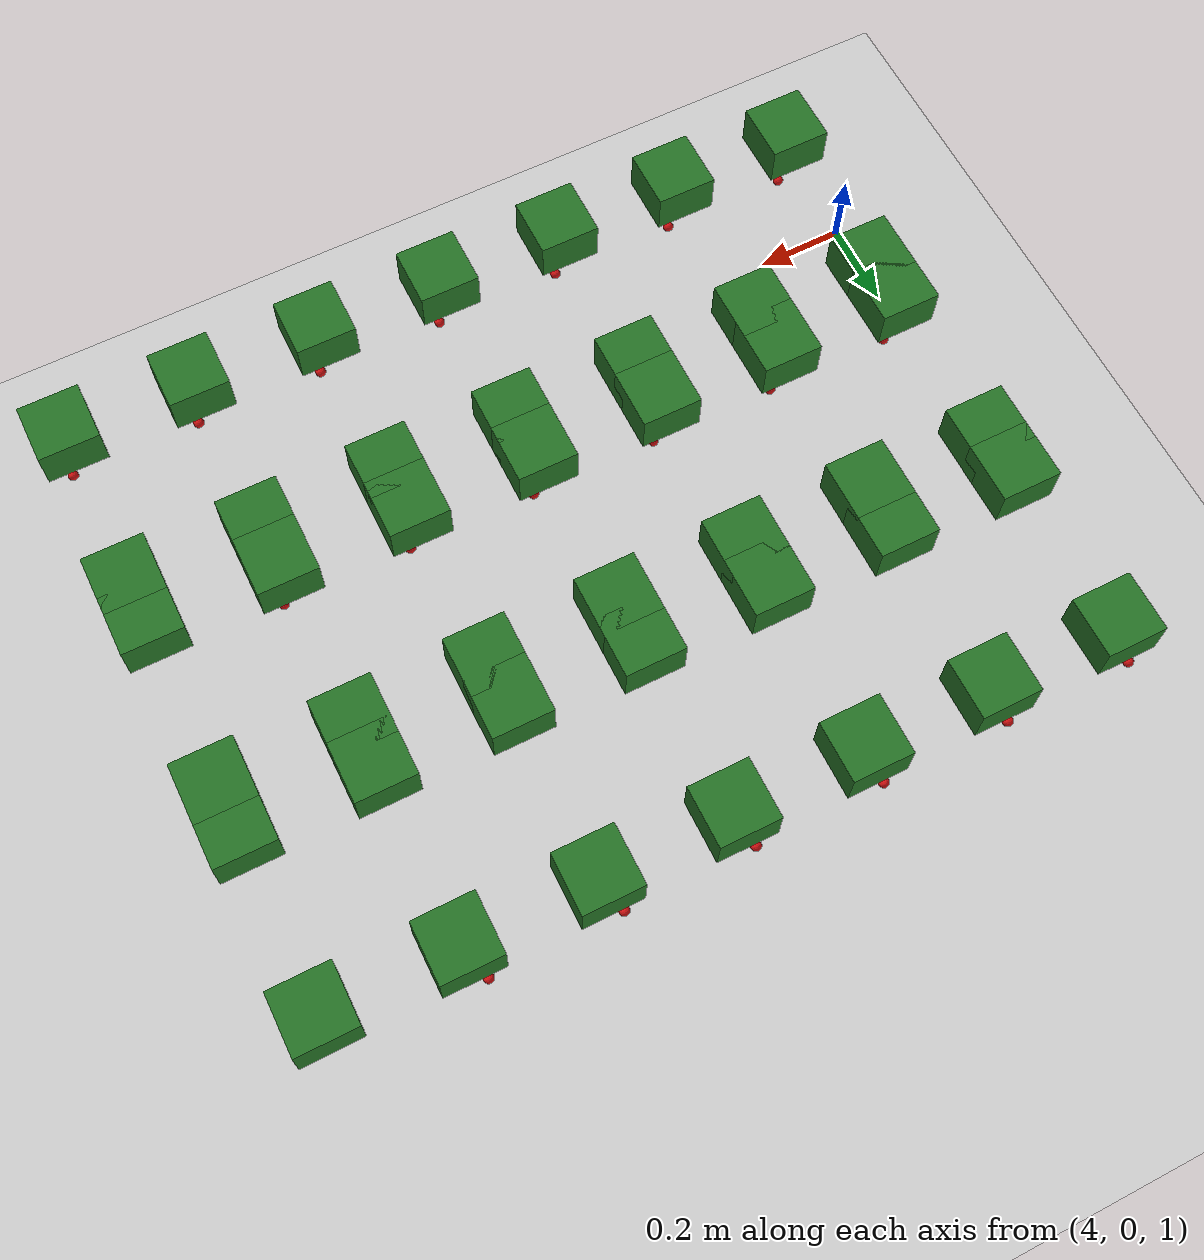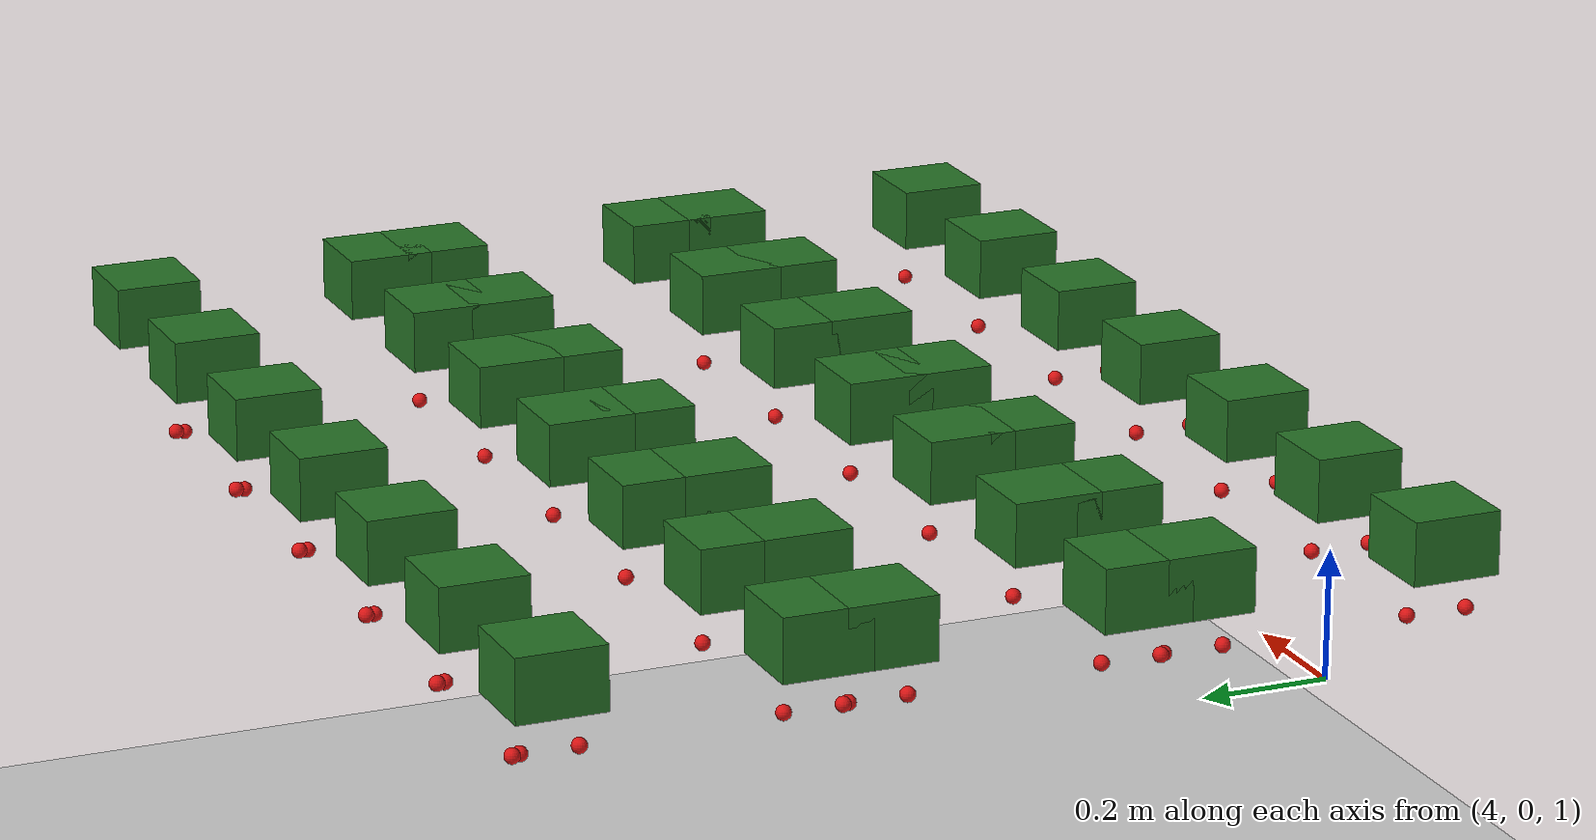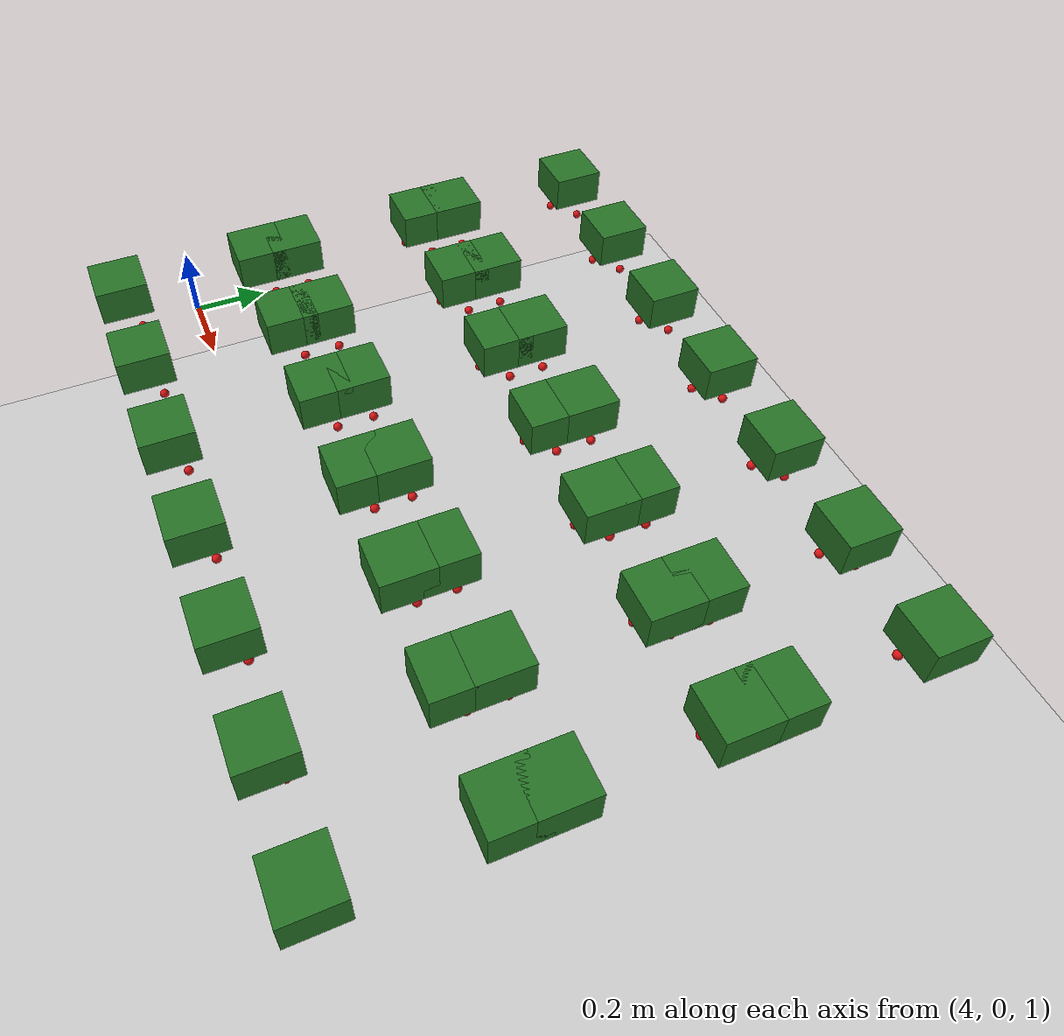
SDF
<sdf version="1.7">
 <world name="irish_polytunnel">
  <include><uri>model://sun</uri></include>
  <include><uri>model://ground_plane</uri></include>
  <model name="row0_L_plant13_foliage">
   <static>true</static>
   <pose>4.050 0.200 1.180 0 0 0</pose>
   <link name="link">
    <visual name="visual">
     <geometry><box><size>0.14 0.14 0.10</size></box></geometry>
     <material><ambient>0.10 0.35 0.10 1</ambient><diffuse>0.15 0.45 0.15 1</diffuse></material>
    </visual>
   </link>
  </model>
  <model name="row0_L_plant13_berry_0">
   <static>true</static>
   <pose>4.020 0.160 1.070 0 0 0</pose>
   <link name="link">
    <visual name="visual">
     <geometry><sphere><radius>0.012</radius></sphere></geometry>
     <material><ambient>0.75 0.05 0.05 1</ambient><diffuse>0.85 0.08 0.08 1</diffuse></material>
    </visual>
   </link>
  </model>
  <model name="row0_L_plant13_berry_1">
   <static>true</static>
   <pose>4.070 0.230 1.050 0 0 0</pose>
   <link name="link">
    <visual name="visual">
     <geometry><sphere><radius>0.012</radius></sphere></geometry>
     <material><ambient>0.75 0.05 0.05 1</ambient><diffuse>0.85 0.08 0.08 1</diffuse></material>
    </visual>
   </link>
  </model>
  <model name="row0_L_plant14_foliage">
   <static>true</static>
   <pose>4.350 0.200 1.180 0 0 0</pose>
   <link name="link">
    <visual name="visual">
     <geometry><box><size>0.14 0.14 0.10</size></box></geometry>
     <material><ambient>0.10 0.35 0.10 1</ambient><diffuse>0.15 0.45 0.15 1</diffuse></material>
    </visual>
   </link>
  </model>
  <model name="row0_L_plant14_berry_0">
   <static>true</static>
   <pose>4.320 0.160 1.070 0 0 0</pose>
   <link name="link">
    <visual name="visual">
     <geometry><sphere><radius>0.012</radius></sphere></geometry>
     <material><ambient>0.75 0.05 0.05 1</ambient><diffuse>0.85 0.08 0.08 1</diffuse></material>
    </visual>
   </link>
  </model>
  <model name="row0_L_plant14_berry_1">
   <static>true</static>
   <pose>4.370 0.230 1.050 0 0 0</pose>
   <link name="link">
    <visual name="visual">
     <geometry><sphere><radius>0.012</radius></sphere></geometry>
     <material><ambient>0.75 0.05 0.05 1</ambient><diffuse>0.85 0.08 0.08 1</diffuse></material>
    </visual>
   </link>
  </model>
  <model name="row0_L_plant15_foliage">
   <static>true</static>
   <pose>4.650 0.200 1.180 0 0 0</pose>
   <link name="link">
    <visual name="visual">
     <geometry><box><size>0.14 0.14 0.10</size></box></geometry>
     <material><ambient>0.10 0.35 0.10 1</ambient><diffuse>0.15 0.45 0.15 1</diffuse></material>
    </visual>
   </link>
  </model>
  <model name="row0_L_plant15_berry_0">
   <static>true</static>
   <pose>4.620 0.160 1.070 0 0 0</pose>
   <link name="link">
    <visual name="visual">
     <geometry><sphere><radius>0.012</radius></sphere></geometry>
     <material><ambient>0.75 0.05 0.05 1</ambient><diffuse>0.85 0.08 0.08 1</diffuse></material>
    </visual>
   </link>
  </model>
  <model name="row0_L_plant15_berry_1">
   <static>true</static>
   <pose>4.670 0.230 1.050 0 0 0</pose>
   <link name="link">
    <visual name="visual">
     <geometry><sphere><radius>0.012</radius></sphere></geometry>
     <material><ambient>0.75 0.05 0.05 1</ambient><diffuse>0.85 0.08 0.08 1</diffuse></material>
    </visual>
   </link>
  </model>
  <model name="row0_L_plant16_foliage">
   <static>true</static>
   <pose>4.950 0.200 1.180 0 0 0</pose>
   <link name="link">
    <visual name="visual">
     <geometry><box><size>0.14 0.14 0.10</size></box></geometry>
     <material><ambient>0.10 0.35 0.10 1</ambient><diffuse>0.15 0.45 0.15 1</diffuse></material>
    </visual>
   </link>
  </model>
  <model name="row0_L_plant16_berry_0">
   <static>true</static>
   <pose>4.920 0.160 1.070 0 0 0</pose>
   <link name="link">
    <visual name="visual">
     <geometry><sphere><radius>0.012</radius></sphere></geometry>
     <material><ambient>0.75 0.05 0.05 1</ambient><diffuse>0.85 0.08 0.08 1</diffuse></material>
    </visual>
   </link>
  </model>
  <model name="row0_L_plant16_berry_1">
   <static>true</static>
   <pose>4.970 0.230 1.050 0 0 0</pose>
   <link name="link">
    <visual name="visual">
     <geometry><sphere><radius>0.012</radius></sphere></geometry>
     <material><ambient>0.75 0.05 0.05 1</ambient><diffuse>0.85 0.08 0.08 1</diffuse></material>
    </visual>
   </link>
  </model>
  <model name="row0_L_plant17_foliage">
   <static>true</static>
   <pose>5.250 0.200 1.180 0 0 0</pose>
   <link name="link">
    <visual name="visual">
     <geometry><box><size>0.14 0.14 0.10</size></box></geometry>
     <material><ambient>0.10 0.35 0.10 1</ambient><diffuse>0.15 0.45 0.15 1</diffuse></material>
    </visual>
   </link>
  </model>
  <model name="row0_L_plant17_berry_0">
   <static>true</static>
   <pose>5.220 0.160 1.070 0 0 0</pose>
   <link name="link">
    <visual name="visual">
     <geometry><sphere><radius>0.012</radius></sphere></geometry>
     <material><ambient>0.75 0.05 0.05 1</ambient><diffuse>0.85 0.08 0.08 1</diffuse></material>
    </visual>
   </link>
  </model>
  <model name="row0_L_plant17_berry_1">
   <static>true</static>
   <pose>5.270 0.230 1.050 0 0 0</pose>
   <link name="link">
    <visual name="visual">
     <geometry><sphere><radius>0.012</radius></sphere></geometry>
     <material><ambient>0.75 0.05 0.05 1</ambient><diffuse>0.85 0.08 0.08 1</diffuse></material>
    </visual>
   </link>
  </model>
  <model name="row0_L_plant18_foliage">
   <static>true</static>
   <pose>5.550 0.200 1.180 0 0 0</pose>
   <link name="link">
    <visual name="visual">
     <geometry><box><size>0.14 0.14 0.10</size></box></geometry>
     <material><ambient>0.10 0.35 0.10 1</ambient><diffuse>0.15 0.45 0.15 1</diffuse></material>
    </visual>
   </link>
  </model>
  <model name="row0_L_plant18_berry_0">
   <static>true</static>
   <pose>5.520 0.160 1.070 0 0 0</pose>
   <link name="link">
    <visual name="visual">
     <geometry><sphere><radius>0.012</radius></sphere></geometry>
     <material><ambient>0.75 0.05 0.05 1</ambient><diffuse>0.85 0.08 0.08 1</diffuse></material>
    </visual>
   </link>
  </model>
  <model name="row0_L_plant18_berry_1">
   <static>true</static>
   <pose>5.570 0.230 1.050 0 0 0</pose>
   <link name="link">
    <visual name="visual">
     <geometry><sphere><radius>0.012</radius></sphere></geometry>
     <material><ambient>0.75 0.05 0.05 1</ambient><diffuse>0.85 0.08 0.08 1</diffuse></material>
    </visual>
   </link>
  </model>
  <model name="row0_L_plant19_foliage">
   <static>true</static>
   <pose>5.850 0.200 1.180 0 0 0</pose>
   <link name="link">
    <visual name="visual">
     <geometry><box><size>0.14 0.14 0.10</size></box></geometry>
     <material><ambient>0.10 0.35 0.10 1</ambient><diffuse>0.15 0.45 0.15 1</diffuse></material>
    </visual>
   </link>
  </model>
  <model name="row0_L_plant19_berry_0">
   <static>true</static>
   <pose>5.820 0.160 1.070 0 0 0</pose>
   <link name="link">
    <visual name="visual">
     <geometry><sphere><radius>0.012</radius></sphere></geometry>
     <material><ambient>0.75 0.05 0.05 1</ambient><diffuse>0.85 0.08 0.08 1</diffuse></material>
    </visual>
   </link>
  </model>
  <model name="row0_L_plant19_berry_1">
   <static>true</static>
   <pose>5.870 0.230 1.050 0 0 0</pose>
   <link name="link">
    <visual name="visual">
     <geometry><sphere><radius>0.012</radius></sphere></geometry>
     <material><ambient>0.75 0.05 0.05 1</ambient><diffuse>0.85 0.08 0.08 1</diffuse></material>
    </visual>
   </link>
  </model>
  <model name="row0_R_plant13_foliage">
   <static>true</static>
   <pose>4.050 -0.200 1.180 0 0 0</pose>
   <link name="link">
    <visual name="visual">
     <geometry><box><size>0.14 0.14 0.10</size></box></geometry>
     <material><ambient>0.10 0.35 0.10 1</ambient><diffuse>0.15 0.45 0.15 1</diffuse></material>
    </visual>
   </link>
  </model>
  <model name="row0_R_plant13_berry_0">
   <static>true</static>
   <pose>4.020 -0.240 1.070 0 0 0</pose>
   <link name="link">
    <visual name="visual">
     <geometry><sphere><radius>0.012</radius></sphere></geometry>
     <material><ambient>0.75 0.05 0.05 1</ambient><diffuse>0.85 0.08 0.08 1</diffuse></material>
    </visual>
   </link>
  </model>
  <model name="row0_R_plant13_berry_1">
   <static>true</static>
   <pose>4.070 -0.170 1.050 0 0 0</pose>
   <link name="link">
    <visual name="visual">
     <geometry><sphere><radius>0.012</radius></sphere></geometry>
     <material><ambient>0.75 0.05 0.05 1</ambient><diffuse>0.85 0.08 0.08 1</diffuse></material>
    </visual>
   </link>
  </model>
  <model name="row0_R_plant14_foliage">
   <static>true</static>
   <pose>4.350 -0.200 1.180 0 0 0</pose>
   <link name="link">
    <visual name="visual">
     <geometry><box><size>0.14 0.14 0.10</size></box></geometry>
     <material><ambient>0.10 0.35 0.10 1</ambient><diffuse>0.15 0.45 0.15 1</diffuse></material>
    </visual>
   </link>
  </model>
  <model name="row0_R_plant14_berry_0">
   <static>true</static>
   <pose>4.320 -0.240 1.070 0 0 0</pose>
   <link name="link">
    <visual name="visual">
     <geometry><sphere><radius>0.012</radius></sphere></geometry>
     <material><ambient>0.75 0.05 0.05 1</ambient><diffuse>0.85 0.08 0.08 1</diffuse></material>
    </visual>
   </link>
  </model>
  <model name="row0_R_plant14_berry_1">
   <static>true</static>
   <pose>4.370 -0.170 1.050 0 0 0</pose>
   <link name="link">
    <visual name="visual">
     <geometry><sphere><radius>0.012</radius></sphere></geometry>
     <material><ambient>0.75 0.05 0.05 1</ambient><diffuse>0.85 0.08 0.08 1</diffuse></material>
    </visual>
   </link>
  </model>
  <model name="row0_R_plant15_foliage">
   <static>true</static>
   <pose>4.650 -0.200 1.180 0 0 0</pose>
   <link name="link">
    <visual name="visual">
     <geometry><box><size>0.14 0.14 0.10</size></box></geometry>
     <material><ambient>0.10 0.35 0.10 1</ambient><diffuse>0.15 0.45 0.15 1</diffuse></material>
    </visual>
   </link>
  </model>
  <model name="row0_R_plant15_berry_0">
   <static>true</static>
   <pose>4.620 -0.240 1.070 0 0 0</pose>
   <link name="link">
    <visual name="visual">
     <geometry><sphere><radius>0.012</radius></sphere></geometry>
     <material><ambient>0.75 0.05 0.05 1</ambient><diffuse>0.85 0.08 0.08 1</diffuse></material>
    </visual>
   </link>
  </model>
  <model name="row0_R_plant15_berry_1">
   <static>true</static>
   <pose>4.670 -0.170 1.050 0 0 0</pose>
   <link name="link">
    <visual name="visual">
     <geometry><sphere><radius>0.012</radius></sphere></geometry>
     <material><ambient>0.75 0.05 0.05 1</ambient><diffuse>0.85 0.08 0.08 1</diffuse></material>
    </visual>
   </link>
  </model>
  <model name="row0_R_plant16_foliage">
   <static>true</static>
   <pose>4.950 -0.200 1.180 0 0 0</pose>
   <link name="link">
    <visual name="visual">
     <geometry><box><size>0.14 0.14 0.10</size></box></geometry>
     <material><ambient>0.10 0.35 0.10 1</ambient><diffuse>0.15 0.45 0.15 1</diffuse></material>
    </visual>
   </link>
  </model>
  <model name="row0_R_plant16_berry_0">
   <static>true</static>
   <pose>4.920 -0.240 1.070 0 0 0</pose>
   <link name="link">
    <visual name="visual">
     <geometry><sphere><radius>0.012</radius></sphere></geometry>
     <material><ambient>0.75 0.05 0.05 1</ambient><diffuse>0.85 0.08 0.08 1</diffuse></material>
    </visual>
   </link>
  </model>
  <model name="row0_R_plant16_berry_1">
   <static>true</static>
   <pose>4.970 -0.170 1.050 0 0 0</pose>
   <link name="link">
    <visual name="visual">
     <geometry><sphere><radius>0.012</radius></sphere></geometry>
     <material><ambient>0.75 0.05 0.05 1</ambient><diffuse>0.85 0.08 0.08 1</diffuse></material>
    </visual>
   </link>
  </model>
  <model name="row0_R_plant17_foliage">
   <static>true</static>
   <pose>5.250 -0.200 1.180 0 0 0</pose>
   <link name="link">
    <visual name="visual">
     <geometry><box><size>0.14 0.14 0.10</size></box></geometry>
     <material><ambient>0.10 0.35 0.10 1</ambient><diffuse>0.15 0.45 0.15 1</diffuse></material>
    </visual>
   </link>
  </model>
  <model name="row0_R_plant17_berry_0">
   <static>true</static>
   <pose>5.220 -0.240 1.070 0 0 0</pose>
   <link name="link">
    <visual name="visual">
     <geometry><sphere><radius>0.012</radius></sphere></geometry>
     <material><ambient>0.75 0.05 0.05 1</ambient><diffuse>0.85 0.08 0.08 1</diffuse></material>
    </visual>
   </link>
  </model>
  <model name="row0_R_plant17_berry_1">
   <static>true</static>
   <pose>5.270 -0.170 1.050 0 0 0</pose>
   <link name="link">
    <visual name="visual">
     <geometry><sphere><radius>0.012</radius></sphere></geometry>
     <material><ambient>0.75 0.05 0.05 1</ambient><diffuse>0.85 0.08 0.08 1</diffuse></material>
    </visual>
   </link>
  </model>
  <model name="row0_R_plant18_foliage">
   <static>true</static>
   <pose>5.550 -0.200 1.180 0 0 0</pose>
   <link name="link">
    <visual name="visual">
     <geometry><box><size>0.14 0.14 0.10</size></box></geometry>
     <material><ambient>0.10 0.35 0.10 1</ambient><diffuse>0.15 0.45 0.15 1</diffuse></material>
    </visual>
   </link>
  </model>
  <model name="row0_R_plant18_berry_0">
   <static>true</static>
   <pose>5.520 -0.240 1.070 0 0 0</pose>
   <link name="link">
    <visual name="visual">
     <geometry><sphere><radius>0.012</radius></sphere></geometry>
     <material><ambient>0.75 0.05 0.05 1</ambient><diffuse>0.85 0.08 0.08 1</diffuse></material>
    </visual>
   </link>
  </model>
  <model name="row0_R_plant18_berry_1">
   <static>true</static>
   <pose>5.570 -0.170 1.050 0 0 0</pose>
   <link name="link">
    <visual name="visual">
     <geometry><sphere><radius>0.012</radius></sphere></geometry>
     <material><ambient>0.75 0.05 0.05 1</ambient><diffuse>0.85 0.08 0.08 1</diffuse></material>
    </visual>
   </link>
  </model>
  <model name="row0_R_plant19_foliage">
   <static>true</static>
   <pose>5.850 -0.200 1.180 0 0 0</pose>
   <link name="link">
    <visual name="visual">
     <geometry><box><size>0.14 0.14 0.10</size></box></geometry>
     <material><ambient>0.10 0.35 0.10 1</ambient><diffuse>0.15 0.45 0.15 1</diffuse></material>
    </visual>
   </link>
  </model>
  <model name="row0_R_plant19_berry_0">
   <static>true</static>
   <pose>5.820 -0.240 1.070 0 0 0</pose>
   <link name="link">
    <visual name="visual">
     <geometry><sphere><radius>0.012</radius></sphere></geometry>
     <material><ambient>0.75 0.05 0.05 1</ambient><diffuse>0.85 0.08 0.08 1</diffuse></material>
    </visual>
   </link>
  </model>
  <model name="row0_R_plant19_berry_1">
   <static>true</static>
   <pose>5.870 -0.170 1.050 0 0 0</pose>
   <link name="link">
    <visual name="visual">
     <geometry><sphere><radius>0.012</radius></sphere></geometry>
     <material><ambient>0.75 0.05 0.05 1</ambient><diffuse>0.85 0.08 0.08 1</diffuse></material>
    </visual>
   </link>
  </model>
  <model name="row1_L_plant13_foliage">
   <static>true</static>
   <pose>4.050 0.700 1.180 0 0 0</pose>
   <link name="link">
    <visual name="visual">
     <geometry><box><size>0.14 0.14 0.10</size></box></geometry>
     <material><ambient>0.10 0.35 0.10 1</ambient><diffuse>0.15 0.45 0.15 1</diffuse></material>
    </visual>
   </link>
  </model>
  <model name="row1_L_plant13_berry_0">
   <static>true</static>
   <pose>4.020 0.660 1.070 0 0 0</pose>
   <link name="link">
    <visual name="visual">
     <geometry><sphere><radius>0.012</radius></sphere></geometry>
     <material><ambient>0.75 0.05 0.05 1</ambient><diffuse>0.85 0.08 0.08 1</diffuse></material>
    </visual>
   </link>
  </model>
  <model name="row1_L_plant13_berry_1">
   <static>true</static>
   <pose>4.070 0.730 1.050 0 0 0</pose>
   <link name="link">
    <visual name="visual">
     <geometry><sphere><radius>0.012</radius></sphere></geometry>
     <material><ambient>0.75 0.05 0.05 1</ambient><diffuse>0.85 0.08 0.08 1</diffuse></material>
    </visual>
   </link>
  </model>
  <model name="row1_L_plant14_foliage">
   <static>true</static>
   <pose>4.350 0.700 1.180 0 0 0</pose>
   <link name="link">
    <visual name="visual">
     <geometry><box><size>0.14 0.14 0.10</size></box></geometry>
     <material><ambient>0.10 0.35 0.10 1</ambient><diffuse>0.15 0.45 0.15 1</diffuse></material>
    </visual>
   </link>
  </model>
  <model name="row1_L_plant14_berry_0">
   <static>true</static>
   <pose>4.320 0.660 1.070 0 0 0</pose>
   <link name="link">
    <visual name="visual">
     <geometry><sphere><radius>0.012</radius></sphere></geometry>
     <material><ambient>0.75 0.05 0.05 1</ambient><diffuse>0.85 0.08 0.08 1</diffuse></material>
    </visual>
   </link>
  </model>
  <model name="row1_L_plant14_berry_1">
   <static>true</static>
   <pose>4.370 0.730 1.050 0 0 0</pose>
   <link name="link">
    <visual name="visual">
     <geometry><sphere><radius>0.012</radius></sphere></geometry>
     <material><ambient>0.75 0.05 0.05 1</ambient><diffuse>0.85 0.08 0.08 1</diffuse></material>
    </visual>
   </link>
  </model>
  <model name="row1_L_plant15_foliage">
   <static>true</static>
   <pose>4.650 0.700 1.180 0 0 0</pose>
   <link name="link">
    <visual name="visual">
     <geometry><box><size>0.14 0.14 0.10</size></box></geometry>
     <material><ambient>0.10 0.35 0.10 1</ambient><diffuse>0.15 0.45 0.15 1</diffuse></material>
    </visual>
   </link>
  </model>
  <model name="row1_L_plant15_berry_0">
   <static>true</static>
   <pose>4.620 0.660 1.070 0 0 0</pose>
   <link name="link">
    <visual name="visual">
     <geometry><sphere><radius>0.012</radius></sphere></geometry>
     <material><ambient>0.75 0.05 0.05 1</ambient><diffuse>0.85 0.08 0.08 1</diffuse></material>
    </visual>
   </link>
  </model>
  <model name="row1_L_plant15_berry_1">
   <static>true</static>
   <pose>4.670 0.730 1.050 0 0 0</pose>
   <link name="link">
    <visual name="visual">
     <geometry><sphere><radius>0.012</radius></sphere></geometry>
     <material><ambient>0.75 0.05 0.05 1</ambient><diffuse>0.85 0.08 0.08 1</diffuse></material>
    </visual>
   </link>
  </model>
  <model name="row1_L_plant16_foliage">
   <static>true</static>
   <pose>4.950 0.700 1.180 0 0 0</pose>
   <link name="link">
    <visual name="visual">
     <geometry><box><size>0.14 0.14 0.10</size></box></geometry>
     <material><ambient>0.10 0.35 0.10 1</ambient><diffuse>0.15 0.45 0.15 1</diffuse></material>
    </visual>
   </link>
  </model>
  <model name="row1_L_plant16_berry_0">
   <static>true</static>
   <pose>4.920 0.660 1.070 0 0 0</pose>
   <link name="link">
    <visual name="visual">
     <geometry><sphere><radius>0.012</radius></sphere></geometry>
     <material><ambient>0.75 0.05 0.05 1</ambient><diffuse>0.85 0.08 0.08 1</diffuse></material>
    </visual>
   </link>
  </model>
  <model name="row1_L_plant16_berry_1">
   <static>true</static>
   <pose>4.970 0.730 1.050 0 0 0</pose>
   <link name="link">
    <visual name="visual">
     <geometry><sphere><radius>0.012</radius></sphere></geometry>
     <material><ambient>0.75 0.05 0.05 1</ambient><diffuse>0.85 0.08 0.08 1</diffuse></material>
    </visual>
   </link>
  </model>
  <model name="row1_L_plant17_foliage">
   <static>true</static>
   <pose>5.250 0.700 1.180 0 0 0</pose>
   <link name="link">
    <visual name="visual">
     <geometry><box><size>0.14 0.14 0.10</size></box></geometry>
     <material><ambient>0.10 0.35 0.10 1</ambient><diffuse>0.15 0.45 0.15 1</diffuse></material>
    </visual>
   </link>
  </model>
  <model name="row1_L_plant17_berry_0">
   <static>true</static>
   <pose>5.220 0.660 1.070 0 0 0</pose>
   <link name="link">
    <visual name="visual">
     <geometry><sphere><radius>0.012</radius></sphere></geometry>
     <material><ambient>0.75 0.05 0.05 1</ambient><diffuse>0.85 0.08 0.08 1</diffuse></material>
    </visual>
   </link>
  </model>
  <model name="row1_L_plant17_berry_1">
   <static>true</static>
   <pose>5.270 0.730 1.050 0 0 0</pose>
   <link name="link">
    <visual name="visual">
     <geometry><sphere><radius>0.012</radius></sphere></geometry>
     <material><ambient>0.75 0.05 0.05 1</ambient><diffuse>0.85 0.08 0.08 1</diffuse></material>
    </visual>
   </link>
  </model>
  <model name="row1_L_plant18_foliage">
   <static>true</static>
   <pose>5.550 0.700 1.180 0 0 0</pose>
   <link name="link">
    <visual name="visual">
     <geometry><box><size>0.14 0.14 0.10</size></box></geometry>
     <material><ambient>0.10 0.35 0.10 1</ambient><diffuse>0.15 0.45 0.15 1</diffuse></material>
    </visual>
   </link>
  </model>
  <model name="row1_L_plant18_berry_0">
   <static>true</static>
   <pose>5.520 0.660 1.070 0 0 0</pose>
   <link name="link">
    <visual name="visual">
     <geometry><sphere><radius>0.012</radius></sphere></geometry>
     <material><ambient>0.75 0.05 0.05 1</ambient><diffuse>0.85 0.08 0.08 1</diffuse></material>
    </visual>
   </link>
  </model>
  <model name="row1_L_plant18_berry_1">
   <static>true</static>
   <pose>5.570 0.730 1.050 0 0 0</pose>
   <link name="link">
    <visual name="visual">
     <geometry><sphere><radius>0.012</radius></sphere></geometry>
     <material><ambient>0.75 0.05 0.05 1</ambient><diffuse>0.85 0.08 0.08 1</diffuse></material>
    </visual>
   </link>
  </model>
  <model name="row1_L_plant19_foliage">
   <static>true</static>
   <pose>5.850 0.700 1.180 0 0 0</pose>
   <link name="link">
    <visual name="visual">
     <geometry><box><size>0.14 0.14 0.10</size></box></geometry>
     <material><ambient>0.10 0.35 0.10 1</ambient><diffuse>0.15 0.45 0.15 1</diffuse></material>
    </visual>
   </link>
  </model>
  <model name="row1_L_plant19_berry_0">
   <static>true</static>
   <pose>5.820 0.660 1.070 0 0 0</pose>
   <link name="link">
    <visual name="visual">
     <geometry><sphere><radius>0.012</radius></sphere></geometry>
     <material><ambient>0.75 0.05 0.05 1</ambient><diffuse>0.85 0.08 0.08 1</diffuse></material>
    </visual>
   </link>
  </model>
  <model name="row1_L_plant19_berry_1">
   <static>true</static>
   <pose>5.870 0.730 1.050 0 0 0</pose>
   <link name="link">
    <visual name="visual">
     <geometry><sphere><radius>0.012</radius></sphere></geometry>
     <material><ambient>0.75 0.05 0.05 1</ambient><diffuse>0.85 0.08 0.08 1</diffuse></material>
    </visual>
   </link>
  </model>
  <model name="row1_R_plant13_foliage">
   <static>true</static>
   <pose>4.050 0.300 1.180 0 0 0</pose>
   <link name="link">
    <visual name="visual">
     <geometry><box><size>0.14 0.14 0.10</size></box></geometry>
     <material><ambient>0.10 0.35 0.10 1</ambient><diffuse>0.15 0.45 0.15 1</diffuse></material>
    </visual>
   </link>
  </model>
  <model name="row1_R_plant13_berry_0">
   <static>true</static>
   <pose>4.020 0.260 1.070 0 0 0</pose>
   <link name="link">
    <visual name="visual">
     <geometry><sphere><radius>0.012</radius></sphere></geometry>
     <material><ambient>0.75 0.05 0.05 1</ambient><diffuse>0.85 0.08 0.08 1</diffuse></material>
    </visual>
   </link>
  </model>
  <model name="row1_R_plant13_berry_1">
   <static>true</static>
   <pose>4.070 0.330 1.050 0 0 0</pose>
   <link name="link">
    <visual name="visual">
     <geometry><sphere><radius>0.012</radius></sphere></geometry>
     <material><ambient>0.75 0.05 0.05 1</ambient><diffuse>0.85 0.08 0.08 1</diffuse></material>
    </visual>
   </link>
  </model>
  <model name="row1_R_plant14_foliage">
   <static>true</static>
   <pose>4.350 0.300 1.180 0 0 0</pose>
   <link name="link">
    <visual name="visual">
     <geometry><box><size>0.14 0.14 0.10</size></box></geometry>
     <material><ambient>0.10 0.35 0.10 1</ambient><diffuse>0.15 0.45 0.15 1</diffuse></material>
    </visual>
   </link>
  </model>
  <model name="row1_R_plant14_berry_0">
   <static>true</static>
   <pose>4.320 0.260 1.070 0 0 0</pose>
   <link name="link">
    <visual name="visual">
     <geometry><sphere><radius>0.012</radius></sphere></geometry>
     <material><ambient>0.75 0.05 0.05 1</ambient><diffuse>0.85 0.08 0.08 1</diffuse></material>
    </visual>
   </link>
  </model>
  <model name="row1_R_plant14_berry_1">
   <static>true</static>
   <pose>4.370 0.330 1.050 0 0 0</pose>
   <link name="link">
    <visual name="visual">
     <geometry><sphere><radius>0.012</radius></sphere></geometry>
     <material><ambient>0.75 0.05 0.05 1</ambient><diffuse>0.85 0.08 0.08 1</diffuse></material>
    </visual>
   </link>
  </model>
  <model name="row1_R_plant15_foliage">
   <static>true</static>
   <pose>4.650 0.300 1.180 0 0 0</pose>
   <link name="link">
    <visual name="visual">
     <geometry><box><size>0.14 0.14 0.10</size></box></geometry>
     <material><ambient>0.10 0.35 0.10 1</ambient><diffuse>0.15 0.45 0.15 1</diffuse></material>
    </visual>
   </link>
  </model>
  <model name="row1_R_plant15_berry_0">
   <static>true</static>
   <pose>4.620 0.260 1.070 0 0 0</pose>
   <link name="link">
    <visual name="visual">
     <geometry><sphere><radius>0.012</radius></sphere></geometry>
     <material><ambient>0.75 0.05 0.05 1</ambient><diffuse>0.85 0.08 0.08 1</diffuse></material>
    </visual>
   </link>
  </model>
  <model name="row1_R_plant15_berry_1">
   <static>true</static>
   <pose>4.670 0.330 1.050 0 0 0</pose>
   <link name="link">
    <visual name="visual">
     <geometry><sphere><radius>0.012</radius></sphere></geometry>
     <material><ambient>0.75 0.05 0.05 1</ambient><diffuse>0.85 0.08 0.08 1</diffuse></material>
    </visual>
   </link>
  </model>
  <model name="row1_R_plant16_foliage">
   <static>true</static>
   <pose>4.950 0.300 1.180 0 0 0</pose>
   <link name="link">
    <visual name="visual">
     <geometry><box><size>0.14 0.14 0.10</size></box></geometry>
     <material><ambient>0.10 0.35 0.10 1</ambient><diffuse>0.15 0.45 0.15 1</diffuse></material>
    </visual>
   </link>
  </model>
  <model name="row1_R_plant16_berry_0">
   <static>true</static>
   <pose>4.920 0.260 1.070 0 0 0</pose>
   <link name="link">
    <visual name="visual">
     <geometry><sphere><radius>0.012</radius></sphere></geometry>
     <material><ambient>0.75 0.05 0.05 1</ambient><diffuse>0.85 0.08 0.08 1</diffuse></material>
    </visual>
   </link>
  </model>
  <model name="row1_R_plant16_berry_1">
   <static>true</static>
   <pose>4.970 0.330 1.050 0 0 0</pose>
   <link name="link">
    <visual name="visual">
     <geometry><sphere><radius>0.012</radius></sphere></geometry>
     <material><ambient>0.75 0.05 0.05 1</ambient><diffuse>0.85 0.08 0.08 1</diffuse></material>
    </visual>
   </link>
  </model>
  <model name="row1_R_plant17_foliage">
   <static>true</static>
   <pose>5.250 0.300 1.180 0 0 0</pose>
   <link name="link">
    <visual name="visual">
     <geometry><box><size>0.14 0.14 0.10</size></box></geometry>
     <material><ambient>0.10 0.35 0.10 1</ambient><diffuse>0.15 0.45 0.15 1</diffuse></material>
    </visual>
   </link>
  </model>
  <model name="row1_R_plant17_berry_0">
   <static>true</static>
   <pose>5.220 0.260 1.070 0 0 0</pose>
   <link name="link">
    <visual name="visual">
     <geometry><sphere><radius>0.012</radius></sphere></geometry>
     <material><ambient>0.75 0.05 0.05 1</ambient><diffuse>0.85 0.08 0.08 1</diffuse></material>
    </visual>
   </link>
  </model>
  <model name="row1_R_plant17_berry_1">
   <static>true</static>
   <pose>5.270 0.330 1.050 0 0 0</pose>
   <link name="link">
    <visual name="visual">
     <geometry><sphere><radius>0.012</radius></sphere></geometry>
     <material><ambient>0.75 0.05 0.05 1</ambient><diffuse>0.85 0.08 0.08 1</diffuse></material>
    </visual>
   </link>
  </model>
  <model name="row1_R_plant18_foliage">
   <static>true</static>
   <pose>5.550 0.300 1.180 0 0 0</pose>
   <link name="link">
    <visual name="visual">
     <geometry><box><size>0.14 0.14 0.10</size></box></geometry>
     <material><ambient>0.10 0.35 0.10 1</ambient><diffuse>0.15 0.45 0.15 1</diffuse></material>
    </visual>
   </link>
  </model>
  <model name="row1_R_plant18_berry_0">
   <static>true</static>
   <pose>5.520 0.260 1.070 0 0 0</pose>
   <link name="link">
    <visual name="visual">
     <geometry><sphere><radius>0.012</radius></sphere></geometry>
     <material><ambient>0.75 0.05 0.05 1</ambient><diffuse>0.85 0.08 0.08 1</diffuse></material>
    </visual>
   </link>
  </model>
  <model name="row1_R_plant18_berry_1">
   <static>true</static>
   <pose>5.570 0.330 1.050 0 0 0</pose>
   <link name="link">
    <visual name="visual">
     <geometry><sphere><radius>0.012</radius></sphere></geometry>
     <material><ambient>0.75 0.05 0.05 1</ambient><diffuse>0.85 0.08 0.08 1</diffuse></material>
    </visual>
   </link>
  </model>
  <model name="row1_R_plant19_foliage">
   <static>true</static>
   <pose>5.850 0.300 1.180 0 0 0</pose>
   <link name="link">
    <visual name="visual">
     <geometry><box><size>0.14 0.14 0.10</size></box></geometry>
     <material><ambient>0.10 0.35 0.10 1</ambient><diffuse>0.15 0.45 0.15 1</diffuse></material>
    </visual>
   </link>
  </model>
  <model name="row1_R_plant19_berry_0">
   <static>true</static>
   <pose>5.820 0.260 1.070 0 0 0</pose>
   <link name="link">
    <visual name="visual">
     <geometry><sphere><radius>0.012</radius></sphere></geometry>
     <material><ambient>0.75 0.05 0.05 1</ambient><diffuse>0.85 0.08 0.08 1</diffuse></material>
    </visual>
   </link>
  </model>
  <model name="row2_L_plant13_foliage">
   <static>true</static>
   <pose>4.050 1.200 1.180 0 0 0</pose>
   <link name="link">
    <visual name="visual">
     <geometry><box><size>0.14 0.14 0.10</size></box></geometry>
     <material><ambient>0.10 0.35 0.10 1</ambient><diffuse>0.15 0.45 0.15 1</diffuse></material>
    </visual>
   </link>
  </model>
  <model name="row2_L_plant13_berry_0">
   <static>true</static>
   <pose>4.020 1.160 1.070 0 0 0</pose>
   <link name="link">
    <visual name="visual">
     <geometry><sphere><radius>0.012</radius></sphere></geometry>
     <material><ambient>0.75 0.05 0.05 1</ambient><diffuse>0.85 0.08 0.08 1</diffuse></material>
    </visual>
   </link>
  </model>
  <model name="row2_L_plant13_berry_1">
   <static>true</static>
   <pose>4.070 1.230 1.050 0 0 0</pose>
   <link name="link">
    <visual name="visual">
     <geometry><sphere><radius>0.012</radius></sphere></geometry>
     <material><ambient>0.75 0.05 0.05 1</ambient><diffuse>0.85 0.08 0.08 1</diffuse></material>
    </visual>
   </link>
  </model>
  <model name="row2_L_plant14_foliage">
   <static>true</static>
   <pose>4.350 1.200 1.180 0 0 0</pose>
   <link name="link">
    <visual name="visual">
     <geometry><box><size>0.14 0.14 0.10</size></box></geometry>
     <material><ambient>0.10 0.35 0.10 1</ambient><diffuse>0.15 0.45 0.15 1</diffuse></material>
    </visual>
   </link>
  </model>
  <model name="row2_L_plant14_berry_0">
   <static>true</static>
   <pose>4.320 1.160 1.070 0 0 0</pose>
   <link name="link">
    <visual name="visual">
     <geometry><sphere><radius>0.012</radius></sphere></geometry>
     <material><ambient>0.75 0.05 0.05 1</ambient><diffuse>0.85 0.08 0.08 1</diffuse></material>
    </visual>
   </link>
  </model>
  <model name="row2_L_plant14_berry_1">
   <static>true</static>
   <pose>4.370 1.230 1.050 0 0 0</pose>
   <link name="link">
    <visual name="visual">
     <geometry><sphere><radius>0.012</radius></sphere></geometry>
     <material><ambient>0.75 0.05 0.05 1</ambient><diffuse>0.85 0.08 0.08 1</diffuse></material>
    </visual>
   </link>
  </model>
  <model name="row2_L_plant15_foliage">
   <static>true</static>
   <pose>4.650 1.200 1.180 0 0 0</pose>
   <link name="link">
    <visual name="visual">
     <geometry><box><size>0.14 0.14 0.10</size></box></geometry>
     <material><ambient>0.10 0.35 0.10 1</ambient><diffuse>0.15 0.45 0.15 1</diffuse></material>
    </visual>
   </link>
  </model>
  <model name="row2_L_plant15_berry_0">
   <static>true</static>
   <pose>4.620 1.160 1.070 0 0 0</pose>
   <link name="link">
    <visual name="visual">
     <geometry><sphere><radius>0.012</radius></sphere></geometry>
     <material><ambient>0.75 0.05 0.05 1</ambient><diffuse>0.85 0.08 0.08 1</diffuse></material>
    </visual>
   </link>
  </model>
  <model name="row2_L_plant15_berry_1">
   <static>true</static>
   <pose>4.670 1.230 1.050 0 0 0</pose>
   <link name="link">
    <visual name="visual">
     <geometry><sphere><radius>0.012</radius></sphere></geometry>
     <material><ambient>0.75 0.05 0.05 1</ambient><diffuse>0.85 0.08 0.08 1</diffuse></material>
    </visual>
   </link>
  </model>
  <model name="row2_L_plant16_foliage">
   <static>true</static>
   <pose>4.950 1.200 1.180 0 0 0</pose>
   <link name="link">
    <visual name="visual">
     <geometry><box><size>0.14 0.14 0.10</size></box></geometry>
     <material><ambient>0.10 0.35 0.10 1</ambient><diffuse>0.15 0.45 0.15 1</diffuse></material>
    </visual>
   </link>
  </model>
  <model name="row2_L_plant16_berry_0">
   <static>true</static>
   <pose>4.920 1.160 1.070 0 0 0</pose>
   <link name="link">
    <visual name="visual">
     <geometry><sphere><radius>0.012</radius></sphere></geometry>
     <material><ambient>0.75 0.05 0.05 1</ambient><diffuse>0.85 0.08 0.08 1</diffuse></material>
    </visual>
   </link>
  </model>
  <model name="row2_L_plant16_berry_1">
   <static>true</static>
   <pose>4.970 1.230 1.050 0 0 0</pose>
   <link name="link">
    <visual name="visual">
     <geometry><sphere><radius>0.012</radius></sphere></geometry>
     <material><ambient>0.75 0.05 0.05 1</ambient><diffuse>0.85 0.08 0.08 1</diffuse></material>
    </visual>
   </link>
  </model>
  <model name="row2_L_plant17_foliage">
   <static>true</static>
   <pose>5.250 1.200 1.180 0 0 0</pose>
   <link name="link">
    <visual name="visual">
     <geometry><box><size>0.14 0.14 0.10</size></box></geometry>
     <material><ambient>0.10 0.35 0.10 1</ambient><diffuse>0.15 0.45 0.15 1</diffuse></material>
    </visual>
   </link>
  </model>
  <model name="row2_L_plant17_berry_0">
   <static>true</static>
   <pose>5.220 1.160 1.070 0 0 0</pose>
   <link name="link">
    <visual name="visual">
     <geometry><sphere><radius>0.012</radius></sphere></geometry>
     <material><ambient>0.75 0.05 0.05 1</ambient><diffuse>0.85 0.08 0.08 1</diffuse></material>
    </visual>
   </link>
  </model>
  <model name="row2_L_plant17_berry_1">
   <static>true</static>
   <pose>5.270 1.230 1.050 0 0 0</pose>
   <link name="link">
    <visual name="visual">
     <geometry><sphere><radius>0.012</radius></sphere></geometry>
     <material><ambient>0.75 0.05 0.05 1</ambient><diffuse>0.85 0.08 0.08 1</diffuse></material>
    </visual>
   </link>
  </model>
  <model name="row2_L_plant18_foliage">
   <static>true</static>
   <pose>5.550 1.200 1.180 0 0 0</pose>
   <link name="link">
    <visual name="visual">
     <geometry><box><size>0.14 0.14 0.10</size></box></geometry>
     <material><ambient>0.10 0.35 0.10 1</ambient><diffuse>0.15 0.45 0.15 1</diffuse></material>
    </visual>
   </link>
  </model>
  <model name="row2_L_plant18_berry_0">
   <static>true</static>
   <pose>5.520 1.160 1.070 0 0 0</pose>
   <link name="link">
    <visual name="visual">
     <geometry><sphere><radius>0.012</radius></sphere></geometry>
     <material><ambient>0.75 0.05 0.05 1</ambient><diffuse>0.85 0.08 0.08 1</diffuse></material>
    </visual>
   </link>
  </model>
  <model name="row2_L_plant18_berry_1">
   <static>true</static>
   <pose>5.570 1.230 1.050 0 0 0</pose>
   <link name="link">
    <visual name="visual">
     <geometry><sphere><radius>0.012</radius></sphere></geometry>
     <material><ambient>0.75 0.05 0.05 1</ambient><diffuse>0.85 0.08 0.08 1</diffuse></material>
    </visual>
   </link>
  </model>
  <model name="row2_L_plant19_foliage">
   <static>true</static>
   <pose>5.850 1.200 1.180 0 0 0</pose>
   <link name="link">
    <visual name="visual">
     <geometry><box><size>0.14 0.14 0.10</size></box></geometry>
     <material><ambient>0.10 0.35 0.10 1</ambient><diffuse>0.15 0.45 0.15 1</diffuse></material>
    </visual>
   </link>
  </model>
  <model name="row2_L_plant19_berry_0">
   <static>true</static>
   <pose>5.820 1.160 1.070 0 0 0</pose>
   <link name="link">
    <visual name="visual">
     <geometry><sphere><radius>0.012</radius></sphere></geometry>
     <material><ambient>0.75 0.05 0.05 1</ambient><diffuse>0.85 0.08 0.08 1</diffuse></material>
    </visual>
   </link>
  </model>
  <model name="row2_R_plant13_foliage">
   <static>true</static>
   <pose>4.050 0.800 1.180 0 0 0</pose>
   <link name="link">
    <visual name="visual">
     <geometry><box><size>0.14 0.14 0.10</size></box></geometry>
     <material><ambient>0.10 0.35 0.10 1</ambient><diffuse>0.15 0.45 0.15 1</diffuse></material>
    </visual>
   </link>
  </model>
  <model name="row2_R_plant13_berry_0">
   <static>true</static>
   <pose>4.020 0.760 1.070 0 0 0</pose>
   <link name="link">
    <visual name="visual">
     <geometry><sphere><radius>0.012</radius></sphere></geometry>
     <material><ambient>0.75 0.05 0.05 1</ambient><diffuse>0.85 0.08 0.08 1</diffuse></material>
    </visual>
   </link>
  </model>
  <model name="row2_R_plant13_berry_1">
   <static>true</static>
   <pose>4.070 0.830 1.050 0 0 0</pose>
   <link name="link">
    <visual name="visual">
     <geometry><sphere><radius>0.012</radius></sphere></geometry>
     <material><ambient>0.75 0.05 0.05 1</ambient><diffuse>0.85 0.08 0.08 1</diffuse></material>
    </visual>
   </link>
  </model>
  <model name="row2_R_plant14_foliage">
   <static>true</static>
   <pose>4.350 0.800 1.180 0 0 0</pose>
   <link name="link">
    <visual name="visual">
     <geometry><box><size>0.14 0.14 0.10</size></box></geometry>
     <material><ambient>0.10 0.35 0.10 1</ambient><diffuse>0.15 0.45 0.15 1</diffuse></material>
    </visual>
   </link>
  </model>
  <model name="row2_R_plant14_berry_0">
   <static>true</static>
   <pose>4.320 0.760 1.070 0 0 0</pose>
   <link name="link">
    <visual name="visual">
     <geometry><sphere><radius>0.012</radius></sphere></geometry>
     <material><ambient>0.75 0.05 0.05 1</ambient><diffuse>0.85 0.08 0.08 1</diffuse></material>
    </visual>
   </link>
  </model>
  <model name="row2_R_plant14_berry_1">
   <static>true</static>
   <pose>4.370 0.830 1.050 0 0 0</pose>
   <link name="link">
    <visual name="visual">
     <geometry><sphere><radius>0.012</radius></sphere></geometry>
     <material><ambient>0.75 0.05 0.05 1</ambient><diffuse>0.85 0.08 0.08 1</diffuse></material>
    </visual>
   </link>
  </model>
  <model name="row2_R_plant15_foliage">
   <static>true</static>
   <pose>4.650 0.800 1.180 0 0 0</pose>
   <link name="link">
    <visual name="visual">
     <geometry><box><size>0.14 0.14 0.10</size></box></geometry>
     <material><ambient>0.10 0.35 0.10 1</ambient><diffuse>0.15 0.45 0.15 1</diffuse></material>
    </visual>
   </link>
  </model>
  <model name="row2_R_plant15_berry_0">
   <static>true</static>
   <pose>4.620 0.760 1.070 0 0 0</pose>
   <link name="link">
    <visual name="visual">
     <geometry><sphere><radius>0.012</radius></sphere></geometry>
     <material><ambient>0.75 0.05 0.05 1</ambient><diffuse>0.85 0.08 0.08 1</diffuse></material>
    </visual>
   </link>
  </model>
  <model name="row2_R_plant15_berry_1">
   <static>true</static>
   <pose>4.670 0.830 1.050 0 0 0</pose>
   <link name="link">
    <visual name="visual">
     <geometry><sphere><radius>0.012</radius></sphere></geometry>
     <material><ambient>0.75 0.05 0.05 1</ambient><diffuse>0.85 0.08 0.08 1</diffuse></material>
    </visual>
   </link>
  </model>
  <model name="row2_R_plant16_foliage">
   <static>true</static>
   <pose>4.950 0.800 1.180 0 0 0</pose>
   <link name="link">
    <visual name="visual">
     <geometry><box><size>0.14 0.14 0.10</size></box></geometry>
     <material><ambient>0.10 0.35 0.10 1</ambient><diffuse>0.15 0.45 0.15 1</diffuse></material>
    </visual>
   </link>
  </model>
  <model name="row2_R_plant16_berry_0">
   <static>true</static>
   <pose>4.920 0.760 1.070 0 0 0</pose>
   <link name="link">
    <visual name="visual">
     <geometry><sphere><radius>0.012</radius></sphere></geometry>
     <material><ambient>0.75 0.05 0.05 1</ambient><diffuse>0.85 0.08 0.08 1</diffuse></material>
    </visual>
   </link>
  </model>
  <model name="row2_R_plant16_berry_1">
   <static>true</static>
   <pose>4.970 0.830 1.050 0 0 0</pose>
   <link name="link">
    <visual name="visual">
     <geometry><sphere><radius>0.012</radius></sphere></geometry>
     <material><ambient>0.75 0.05 0.05 1</ambient><diffuse>0.85 0.08 0.08 1</diffuse></material>
    </visual>
   </link>
  </model>
  <model name="row2_R_plant17_foliage">
   <static>true</static>
   <pose>5.250 0.800 1.180 0 0 0</pose>
   <link name="link">
    <visual name="visual">
     <geometry><box><size>0.14 0.14 0.10</size></box></geometry>
     <material><ambient>0.10 0.35 0.10 1</ambient><diffuse>0.15 0.45 0.15 1</diffuse></material>
    </visual>
   </link>
  </model>
  <model name="row2_R_plant17_berry_0">
   <static>true</static>
   <pose>5.220 0.760 1.070 0 0 0</pose>
   <link name="link">
    <visual name="visual">
     <geometry><sphere><radius>0.012</radius></sphere></geometry>
     <material><ambient>0.75 0.05 0.05 1</ambient><diffuse>0.85 0.08 0.08 1</diffuse></material>
    </visual>
   </link>
  </model>
  <model name="row2_R_plant17_berry_1">
   <static>true</static>
   <pose>5.270 0.830 1.050 0 0 0</pose>
   <link name="link">
    <visual name="visual">
     <geometry><sphere><radius>0.012</radius></sphere></geometry>
     <material><ambient>0.75 0.05 0.05 1</ambient><diffuse>0.85 0.08 0.08 1</diffuse></material>
    </visual>
   </link>
  </model>
  <model name="row2_R_plant18_foliage">
   <static>true</static>
   <pose>5.550 0.800 1.180 0 0 0</pose>
   <link name="link">
    <visual name="visual">
     <geometry><box><size>0.14 0.14 0.10</size></box></geometry>
     <material><ambient>0.10 0.35 0.10 1</ambient><diffuse>0.15 0.45 0.15 1</diffuse></material>
    </visual>
   </link>
  </model>
  <model name="row2_R_plant18_berry_0">
   <static>true</static>
   <pose>5.520 0.760 1.070 0 0 0</pose>
   <link name="link">
    <visual name="visual">
     <geometry><sphere><radius>0.012</radius></sphere></geometry>
     <material><ambient>0.75 0.05 0.05 1</ambient><diffuse>0.85 0.08 0.08 1</diffuse></material>
    </visual>
   </link>
  </model>
  <model name="row2_R_plant18_berry_1">
   <static>true</static>
   <pose>5.570 0.830 1.050 0 0 0</pose>
   <link name="link">
    <visual name="visual">
     <geometry><sphere><radius>0.012</radius></sphere></geometry>
     <material><ambient>0.75 0.05 0.05 1</ambient><diffuse>0.85 0.08 0.08 1</diffuse></material>
    </visual>
   </link>
  </model>
  <model name="row2_R_plant19_foliage">
   <static>true</static>
   <pose>5.850 0.800 1.180 0 0 0</pose>
   <link name="link">
    <visual name="visual">
     <geometry><box><size>0.14 0.14 0.10</size></box></geometry>
     <material><ambient>0.10 0.35 0.10 1</ambient><diffuse>0.15 0.45 0.15 1</diffuse></material>
    </visual>
   </link>
  </model>
  <model name="row2_R_plant19_berry_0">
   <static>true</static>
   <pose>5.820 0.760 1.070 0 0 0</pose>
   <link name="link">
    <visual name="visual">
     <geometry><sphere><radius>0.012</radius></sphere></geometry>
     <material><ambient>0.75 0.05 0.05 1</ambient><diffuse>0.85 0.08 0.08 1</diffuse></material>
    </visual>
   </link>
  </model>
  <model name="row3_R_plant13_berry_0">
   <static>true</static>
   <pose>4.020 1.260 1.070 0 0 0</pose>
   <link name="link">
    <visual name="visual">
     <geometry><sphere><radius>0.012</radius></sphere></geometry>
     <material><ambient>0.75 0.05 0.05 1</ambient><diffuse>0.85 0.08 0.08 1</diffuse></material>
    </visual>
   </link>
  </model>
  <model name="row3_R_plant14_berry_0">
   <static>true</static>
   <pose>4.320 1.260 1.070 0 0 0</pose>
   <link name="link">
    <visual name="visual">
     <geometry><sphere><radius>0.012</radius></sphere></geometry>
     <material><ambient>0.75 0.05 0.05 1</ambient><diffuse>0.85 0.08 0.08 1</diffuse></material>
    </visual>
   </link>
  </model>
  <model name="row3_R_plant15_berry_0">
   <static>true</static>
   <pose>4.620 1.260 1.070 0 0 0</pose>
   <link name="link">
    <visual name="visual">
     <geometry><sphere><radius>0.012</radius></sphere></geometry>
     <material><ambient>0.75 0.05 0.05 1</ambient><diffuse>0.85 0.08 0.08 1</diffuse></material>
    </visual>
   </link>
  </model>
  <model name="row3_R_plant16_berry_0">
   <static>true</static>
   <pose>4.920 1.260 1.070 0 0 0</pose>
   <link name="link">
    <visual name="visual">
     <geometry><sphere><radius>0.012</radius></sphere></geometry>
     <material><ambient>0.75 0.05 0.05 1</ambient><diffuse>0.85 0.08 0.08 1</diffuse></material>
    </visual>
   </link>
  </model>
  <model name="row3_R_plant17_berry_0">
   <static>true</static>
   <pose>5.220 1.260 1.070 0 0 0</pose>
   <link name="link">
    <visual name="visual">
     <geometry><sphere><radius>0.012</radius></sphere></geometry>
     <material><ambient>0.75 0.05 0.05 1</ambient><diffuse>0.85 0.08 0.08 1</diffuse></material>
    </visual>
   </link>
  </model>
  <model name="row3_R_plant18_berry_0">
   <static>true</static>
   <pose>5.520 1.260 1.070 0 0 0</pose>
   <link name="link">
    <visual name="visual">
     <geometry><sphere><radius>0.012</radius></sphere></geometry>
     <material><ambient>0.75 0.05 0.05 1</ambient><diffuse>0.85 0.08 0.08 1</diffuse></material>
    </visual>
   </link>
  </model>
 </world>
</sdf>
